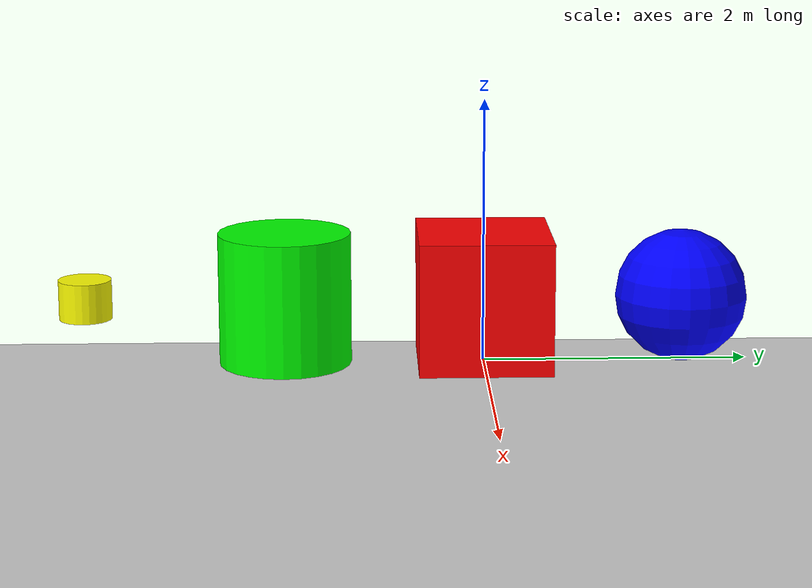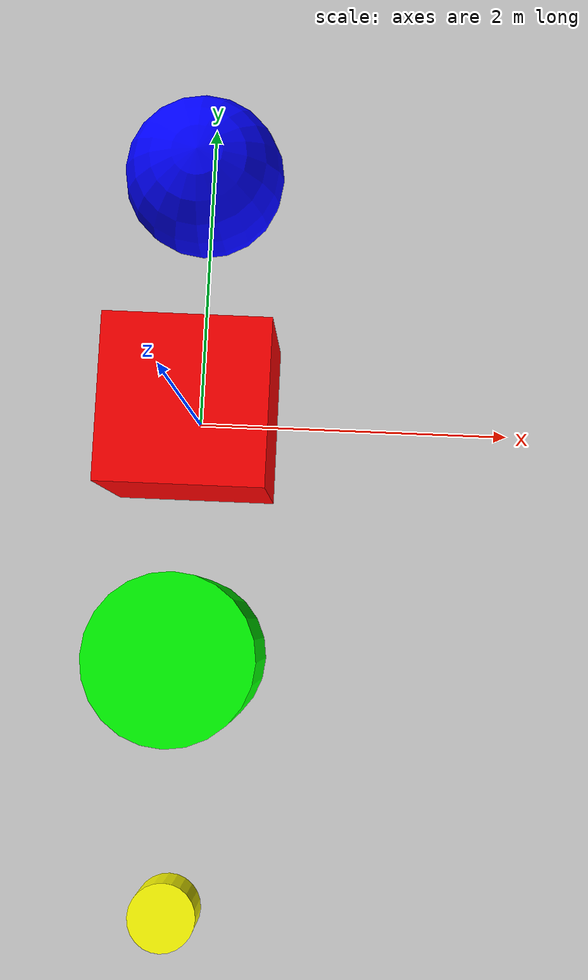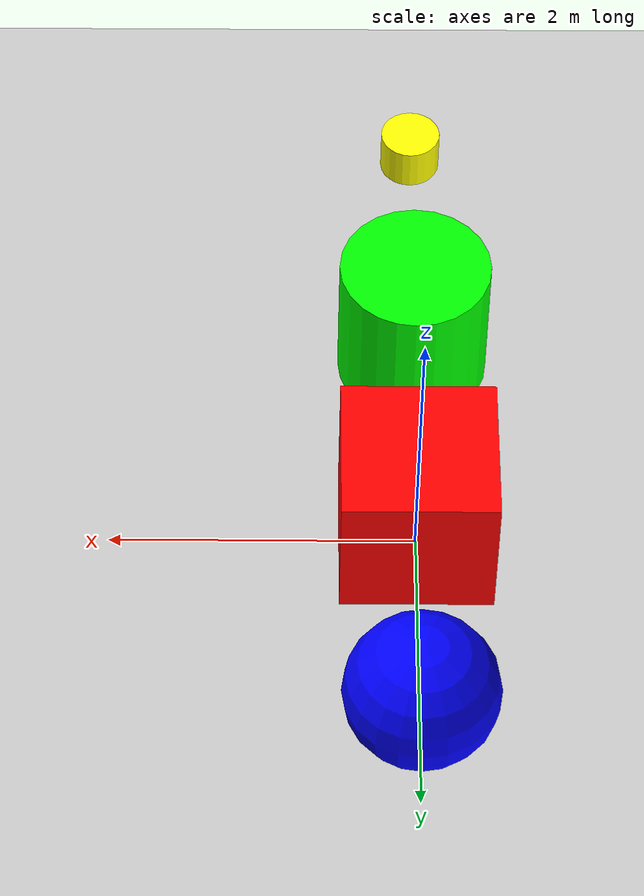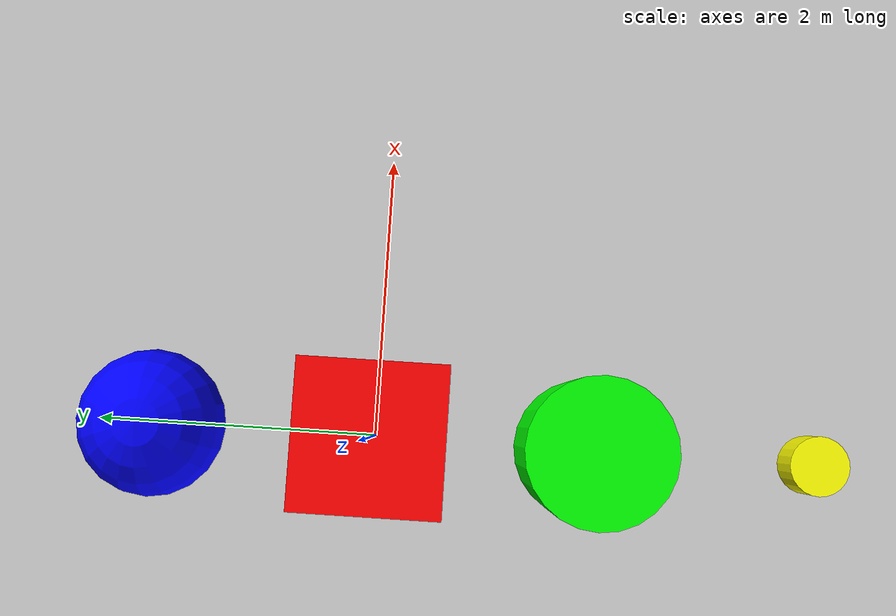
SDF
<?xml version="1.0" ?>
<sdf version="1.6">
  <world name="default">
    <plugin
     filename="libignition-gazebo-physics-system.so"
     name="ignition::gazebo::systems::Physics">
    </plugin>

    <light type="directional" name="sun">
      <cast_shadows>true</cast_shadows>
      <pose>0 0 10 0 0 0</pose>
      <diffuse>0.8 0.8 0.8 1</diffuse>
      <specular>0.2 0.2 0.2 1</specular>
      <attenuation>
        <range>1000</range>
        <constant>0.9</constant>
        <linear>0.01</linear>
        <quadratic>0.001</quadratic>
      </attenuation>
      <direction>-0.5 0.1 -0.9</direction>
    </light>

    <model name="ground_plane">
      <static>true</static>
      <pose>0 0 -0.5 0 0.52 0</pose>
      <link name="link">
        <collision name="collision">
          <geometry>
            <plane>
              <normal>0 0 1</normal>
            </plane>
          </geometry>
        </collision>
        <visual name="visual">
          <geometry>
            <plane>
              <normal>0 0 1</normal>
              <size>100 100</size>
            </plane>
          </geometry>
          <material>
            <ambient>0.8 0.8 0.8 1</ambient>
            <diffuse>0.8 0.8 0.8 1</diffuse>
            <specular>0.8 0.8 0.8 1</specular>
          </material>
        </visual>
      </link>
    </model>

    <model name="box">
      <pose>0 0 0.5 0 0 0</pose>
      <link name="box_link">
        <inertial>
          <inertia>
            <ixx>1</ixx>
            <ixy>0</ixy>
            <ixz>0</ixz>
            <iyy>1</iyy>
            <iyz>0</iyz>
            <izz>1</izz>
          </inertia>
          <mass>1.0</mass>
        </inertial>
        <collision name="box_collision">
          <geometry>
            <box>
              <size>1 1 1</size>
            </box>
          </geometry>
        </collision>

        <visual name="box_visual">
          <geometry>
            <box>
              <size>1 1 1</size>
            </box>
          </geometry>
          <material>
            <ambient>1 0 0 1</ambient>
            <diffuse>1 0 0 1</diffuse>
            <specular>1 0 0 1</specular>
          </material>
        </visual>
      </link>
    </model>

    <model name="cylinder">
      <pose>0 -1.5 0.5 0 0 0</pose>
      <link name="cylinder_link">
        <inertial>
          <inertia>
            <ixx>2</ixx>
            <ixy>0</ixy>
            <ixz>0</ixz>
            <iyy>2</iyy>
            <iyz>0</iyz>
            <izz>2</izz>
          </inertia>
          <mass>2.0</mass>
        </inertial>
        <collision name="cylinder_collision">
          <geometry>
            <cylinder>
              <radius>0.5</radius>
              <length>1.0</length>
            </cylinder>
          </geometry>
        </collision>

        <visual name="cylinder_visual">
          <geometry>
            <cylinder>
              <radius>0.5</radius>
              <length>1.0</length>
            </cylinder>
          </geometry>
          <material>
            <ambient>0 1 0 1</ambient>
            <diffuse>0 1 0 1</diffuse>
            <specular>0 1 0 1</specular>
          </material>
        </visual>
      </link>
      <link name="cylinder_link2">
        <pose>0 -1.5 0 0 0 0</pose>
        <inertial>
          <inertia>
            <ixx>0.01</ixx>
            <ixy>0</ixy>
            <ixz>0</ixz>
            <iyy>0.01</iyy>
            <iyz>0</iyz>
            <izz>0.01</izz>
          </inertia>
          <mass>0.1</mass>
        </inertial>
        <collision name="cylinder_collision">
          <geometry>
            <cylinder>
              <radius>0.2</radius>
              <length>0.3</length>
            </cylinder>
          </geometry>
        </collision>

        <visual name="cylinder_visual">
          <geometry>
            <cylinder>
              <radius>0.2</radius>
              <length>0.3</length>
            </cylinder>
          </geometry>
          <material>
            <ambient>1 1 0 1</ambient>
            <diffuse>1 1 0 1</diffuse>
            <specular>1 1 0 1</specular>
            <emissive>1 1 0 1</emissive>
          </material>
        </visual>
      </link>
      <link name="cylinder_link2">
        <pose>0 -1.5 0 0 0 0</pose>
        <inertial>
          <inertia>
            <ixx>0.01</ixx>
            <ixy>0</ixy>
            <ixz>0</ixz>
            <iyy>0.01</iyy>
            <iyz>0</iyz>
            <izz>0.01</izz>
          </inertia>
          <mass>0.1</mass>
        </inertial>
        <collision name="cylinder_collision">
          <geometry>
            <cylinder>
              <radius>0.2</radius>
              <length>0.3</length>
            </cylinder>
          </geometry>
        </collision>

        <visual name="cylinder_visual">
          <geometry>
            <cylinder>
              <radius>0.2</radius>
              <length>0.3</length>
            </cylinder>
          </geometry>
          <material>
            <ambient>1 1 0 1</ambient>
            <diffuse>1 1 0 1</diffuse>
            <specular>1 1 0 1</specular>
            <emissive>1 1 0 1</emissive>
          </material>
        </visual>
      </link>
    </model>

    <model name="sphere">
      <pose>0 1.5 0.5 0 0 0</pose>
      <link name="sphere_link">
        <inertial>
          <inertia>
            <ixx>3</ixx>
            <ixy>0</ixy>
            <ixz>0</ixz>
            <iyy>3</iyy>
            <iyz>0</iyz>
            <izz>3</izz>
          </inertia>
          <mass>3.0</mass>
        </inertial>
        <collision name="sphere_collision">
          <geometry>
            <sphere>
              <radius>0.5</radius>
            </sphere>
          </geometry>
        </collision>

        <visual name="sphere_visual">
          <geometry>
            <sphere>
              <radius>0.5</radius>
            </sphere>
          </geometry>
          <material>
            <ambient>0 0 1 1</ambient>
            <diffuse>0 0 1 1</diffuse>
            <specular>0 0 1 1</specular>
          </material>
        </visual>
      </link>
    </model>

    <plugin name="ignition::gazebo" filename="dummy">

      <performer name="perf_sphere">
        <ref>sphere</ref>
        <geometry>
          <box>
            <size>1 1 1</size>
          </box>
        </geometry>
      </performer>

      <performer name="perf_cylinder">
        <ref>cylinder</ref>
        <geometry>
          <box>
            <size>1 1 1</size>
          </box>
        </geometry>
      </performer>

      <performer name="perf_box">
        <ref>box</ref>
        <geometry>
          <box>
            <size>1 1 1</size>
          </box>
        </geometry>
      </performer>

    </plugin>

  </world>
</sdf>
